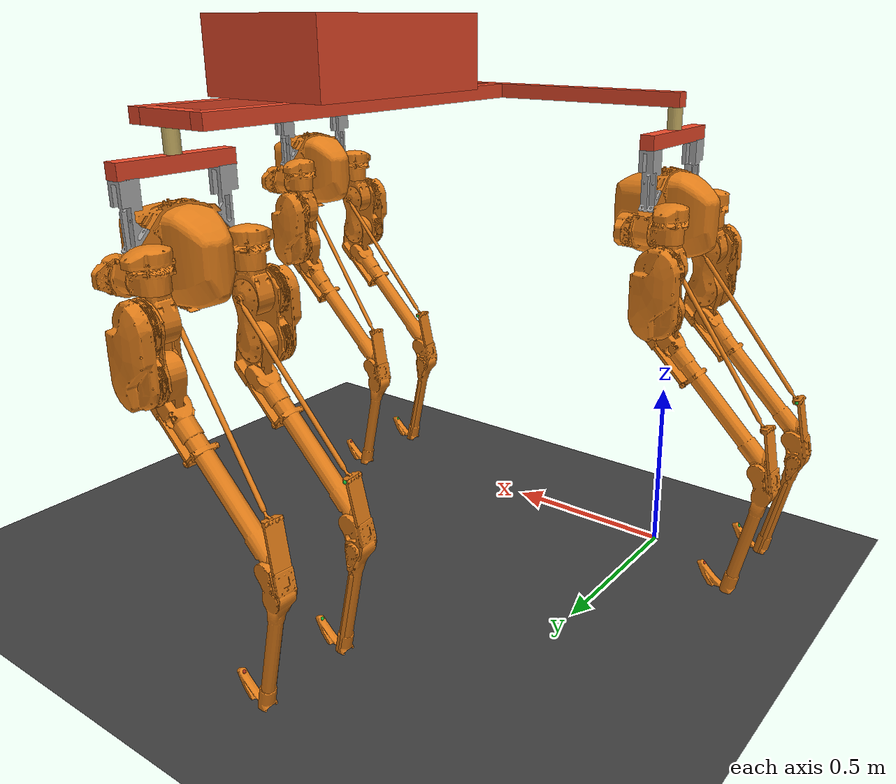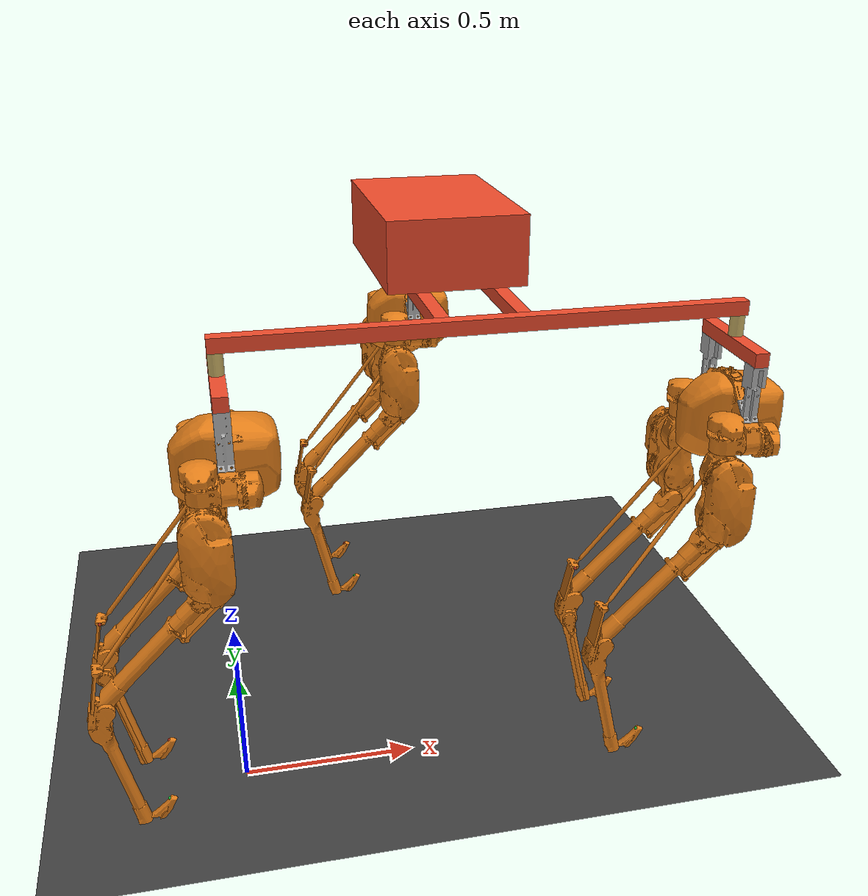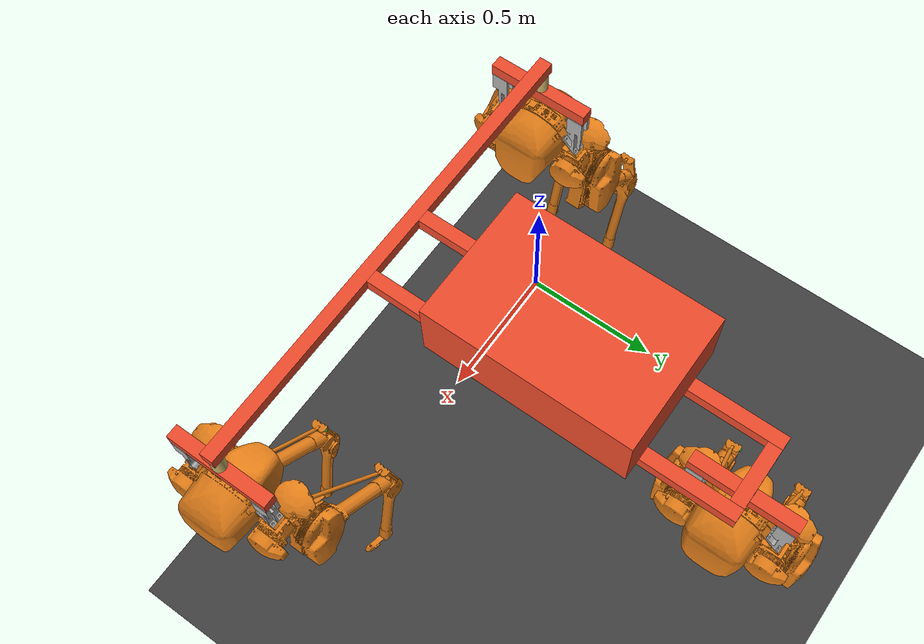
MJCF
<!-- Cassie simulation model developed by the Dynamic Robotics Laboratory -->
<mujoco model='cassie'>
  <compiler inertiafromgeom='auto' angle='degree' eulerseq='zyx' meshdir='cassie-stl-meshes'/>
  <size nuser_actuator='1' nuser_sensor='1' nuser_geom='1' nconmax='1000'/>
  <option timestep='0.0005' iterations='50' solver='Newton' gravity='0 0 -9.80665'/>
  <!-- Timestep is set to 0.0005 because our controller runs at 2 kHz -->
  <!-- Larger values still have stable dynamics -->

  <visual>
    <quality shadowsize='4096'/>
    <map znear='0.01' zfar='5'/>
    <global offwidth='848'/>
  </visual>

  <default>
    <joint limited='true'/>
    <motor ctrllimited='true'/>
    <geom contype='0' conaffinity='0' condim='1' solref='0.005 1'/>
    <equality solref='0.005 1'/>
    <default class='cassie'>
      <geom material='cassie'/>
    </default>
    <default class='collision'>
      <!-- User parameter for geoms is used to identify collision types -->
      <geom material='collision' contype='1' user='2'/>
      <default class='collision-left'>
        <geom contype='2' conaffinity='4' group='1'/>
      </default>
      <default class='collision-right'>
        <geom contype='4' conaffinity='2' group='1'/>
      </default>
    </default>
    <default class='obstacle'>
      <geom material='obstacle' condim='3' contype='8' conaffinity='15' user='1'/>
    </default>
  </default>

  <asset>
    <texture type='skybox' builtin='gradient' width='128' height='128' rgb1='0.4 0.6 0.8' rgb2='0 0 0'/>
    <texture name='plane' type='2d' builtin='checker' rgb1='0.2 0.2 0.2' rgb2='0.3 0.3 0.3' width='512' height='512'/>
    <material name='plane' reflectance='0.0' texture='plane' texrepeat='1 1' texuniform='true'/>
    <material name='cassie'    rgba='0.9 0.5 0.1 1'/>
    <material name='collision' rgba='0.1 0.5 0.9 0'/>
    <material name='obstacle'  rgba='0.2 0.6 0.2 1'/>
    <mesh name='cassie-pelvis' file='pelvis.stl'/>
    <mesh name='left-hip-roll'     file='hip-roll.stl'/>
    <mesh name='left-hip-yaw'      file='hip-yaw.stl'/>
    <mesh name='left-hip-pitch'    file='hip-pitch.stl'/>
    <mesh name='left-achilles-rod' file='achilles-rod.stl'/>
    <mesh name='left-knee'         file='knee.stl'/>
    <mesh name='left-knee-spring'  file='knee-spring.stl'/>
    <mesh name='left-shin'         file='shin.stl'/>
    <mesh name='left-tarsus'       file='tarsus.stl'/>
    <mesh name='left-heel-spring'  file='heel-spring.stl'/>
    <mesh name='left-foot-crank'   file='foot-crank.stl'/>
    <mesh name='left-plantar-rod'  file='plantar-rod.stl'/>
    <mesh name='left-foot'         file='foot.stl'/>
    <mesh name='right-hip-roll'     scale='1 -1 1' file='hip-roll.stl'/>
    <mesh name='right-hip-yaw'      scale='1 -1 1' file='hip-yaw.stl'/>
    <mesh name='right-hip-pitch'    scale='1 1 -1' file='hip-pitch.stl'/>
    <mesh name='right-achilles-rod' scale='1 1 -1' file='achilles-rod.stl'/>
    <mesh name='right-knee'         scale='1 1 -1' file='knee.stl'/>
    <mesh name='right-knee-spring'  scale='1 1 -1' file='knee-spring.stl'/>
    <mesh name='right-shin'         scale='1 1 -1' file='shin.stl'/>
    <mesh name='right-tarsus'       scale='1 1 -1' file='tarsus.stl'/>
    <mesh name='right-heel-spring'  scale='1 1 -1' file='heel-spring.stl'/>
    <mesh name='right-foot-crank'   scale='1 1 -1' file='foot-crank.stl'/>
    <mesh name='right-plantar-rod'  scale='1 1 -1' file='plantar-rod.stl'/>
    <mesh name='right-foot'         scale='1 1 -1' file='foot.stl'/>
    <mesh name='cassiepede-mount'         scale='1 1 -1' file='cassiepede-mount.stl'/>
    <mesh name='cassiepede-standoff'  scale='0.001 0.001 0.001' file='cassiepede_standoff.stl'/>
  </asset>

  <worldbody>
    <geom name='floor' pos='0.001 0 0' size='100 100 .125' type='plane' material='plane' condim='3' conaffinity='15' priority='100'/>
    <light mode='trackcom' pos='0 0 5' dir='0 0 -1'/>
    <light directional='true' pos='0 0 3' dir='0 0 -1' diffuse='0.2 0.2 0.2' specular='0 0 0'/>

    <body name="deck" pos="0 0 1.2">

      <inertial pos='0.0 0.0 0.0' mass='0'/>

      <site name='poi_site' size='1e-5' pos='0.7 0 0.0' rgba='0.0 0.5 0.5 1.0'/>

      <body pos='0.7 0.55 0.14' euler="90 0 0">
        <geom  pos='0.02 -0.12 0.0'  mass='5.0' type='box' size='0.55 0.02 0.02'
              rgba="0.93333333 0.29411765 0.16862745 1" class='collision' group='1'/>

        <geom pos='0.02 0.1 0.0'  mass='5.0' type='box' size='0.55 0.02 0.02'
              rgba="0.93333333 0.29411765 0.16862745 1" class='collision' group='1'/>

        <geom pos='0.55 -0.01 0.0' mass='0.0'  type='box' size='0.09 0.02 0.02' euler="90 0 0"
              rgba="0.93333333 0.29411765 0.16862745 1" class='collision' group='1'/>

        <geom pos="0 0 0.12" type="box"  mass='5.0' size="0.3 0.2 0.1" rgba="0.93333333 0.29411765 0.16862745 1" class="collision" group="1"/>
      </body>

      <body pos='0.72 0 0.14'>
        <geom  type='box' mass="10.0" size='0.72 0.02 0.02'
              rgba="0.93333333 0.29411765 0.16862745 1" class='collision' group='1'/>
      </body>

      <joint type='slide' axis='1 0 0' limited='false' name="slide_a0"/>
      <joint type='slide' axis='0 1 0' limited='false' name="slide_a1"/>
      <joint type='slide' axis='0 0 1' limited='false' name="slide_a2" ref='1.01'/>
      <joint type='ball' limited='false'/>

      <body name='cassie-pelvis' pos='0 0 -0.2' childclass='cassie'>
        <geom type='mesh' mesh='cassiepede-standoff' pos='0 0.095 0.055' rgba="0.7 0.7 0.7 1.0" euler="90 0 90"/>
        <geom type='mesh' mesh='cassiepede-standoff' pos='0.041 -0.095 0.055' rgba="0.7 0.7 0.7 1.0" euler="-90 0 90"/>
        <geom type='box' size='0.16 0.02 0.02'  pos="0.02 0 0.24" rgba="0.93333333 0.29411765 0.16862745 1" euler="90 0 0" />
        <geom type="cylinder" size="0.02 0.035 0.01" pos="0.02 0 0.29" rgba="0.8 0.7 0.4 1"/>

        <camera name='track' pos='0 -3 1' zaxis='0 -1 0.5' mode='track'/>
          <site name='cassie-pelvis_site' size='0.01' pos='0.0 0.0 0.0' rgba='0.0 0.0 0.5 1.0'/>
          <camera name='realsense-d455' pos='.1856 0 0.24' euler='-90 0 30' fovy='58'/>
          <inertial pos='0.05066 0.000346 0.02841' mass='10.33' fullinertia='0.085821 0.049222 0.08626 1.276e-05 -0.00016022 -0.000414'/>

          <joint type='hinge' axis="0 0 1" limited='false' pos="0 0 0.2"/>
          <joint type='hinge' axis="0 1 0" limited='false' pos="0 0 0.2"/>
          <joint type='hinge' axis="1 0 0" limited='false' pos="0 0 0.2"/>

          <geom type='mesh' mesh='cassie-pelvis'/>
          <geom type='sphere' size='0.15' pos='0.02 0 0.02' class='collision' group='1'/>
          <site name='imu' size='0.01' pos='0.03155 0 -0.07996' rgba='0.5 0.5 0.5 1.0'/>
          <body name='left-hip-roll' pos='0.021 0.135 0' xyaxes='0 0 -1 0 1 0'>
            <inertial pos='-0.01793 0.0001 -0.04428' mass='1.82' fullinertia='0.003431 0.003793 0.002135 -6.65e-07 -0.00084 3.99e-06'/>
            <joint name='left-hip-roll' type='hinge' range='-15 22.5' damping='1' armature='0.038125'/>
            <geom type='mesh' mesh='left-hip-roll'/>
            <body name='left-hip-yaw' pos='0 0 -0.07' xyaxes='0 0 1 0 1 0'>
              <inertial pos='0 -1e-05 -0.034277' mass='1.171' fullinertia='0.002443 0.002803 0.000842 -4e-08 2.462e-07 -2.71e-08'/>
              <joint name='left-hip-yaw' type='hinge' range='-22.5 22.5' damping='1' armature='0.038125'/>
              <geom type='mesh' mesh='left-hip-yaw'/>
              <body name='left-hip-pitch' pos='0 0 -0.09' xyaxes='0 0 -1 1 0 0'>
                <inertial pos='0.05946 5e-05 -0.03581' mass='5.52' fullinertia='0.010898 0.029714 0.030257 -0.0002669 -5.721e-05 9.17e-06'/>
                <joint name='left-hip-pitch' type='hinge' range='-50 80' damping='1' armature='0.09344'/>
                <geom type='mesh' mesh='left-hip-pitch'/>
                <geom type='capsule' size='0.08' fromto='0 0 -0.04 0.12 0 -0.0355' class='collision' group='1'/>
                <body name='left-achilles-rod' pos='0 0 0.045' xyaxes='0.7922 -0.60599 -0.072096 0.60349 0.79547 -0.054922'>
                  <inertial pos='0.24719 0 0' mass='0.1567' fullinertia='3.754e-06 0.004487 0.004488 -3.74e-08 -1.61e-08 0'/>
                  <joint name='left-achilles-rod' type='ball' limited='false' damping='0.01'/>
                  <geom type='mesh' mesh='left-achilles-rod'/>
                  <geom type='capsule' size='0.008' fromto='0 0 0 0.5012 0.0 0' class='collision-left'/>
                </body>
                <body name='left-knee' pos='0.12 0 0.0045' xyaxes='0.70711 -0.70711 0 0.70711 0.70711 0'>
                  <inertial pos='0.023 0.03207 -0.002181' mass='0.7578' fullinertia='0.001376 0.0010335 0.0021637 -0.00039744 -4.085e-05 -5.374e-05'/>
                  <joint name='left-knee' type='hinge' ref='-45' range='-164 -37' damping='1' armature='0.09344'/>
                  <geom type='mesh' mesh='left-knee'/>
                  <body name='left-knee-spring' pos='0.06068 0.08241 0'>
                    <inertial pos='0.0836 0.0034 0' mass='0.186' fullinertia='5.215e-05 0.00041205 0.0003669 6.87e-06 0 0'/>
                    <geom type='mesh' mesh='left-knee-spring'/>
                  </body>
                  <body name='left-shin' pos='0.06068 0.04741 0'>
                    <inertial pos='0.18338 0.001169 0.0002123' mass='0.577' fullinertia='0.00035939 0.014728 0.014707 -0.00020981 2.266e-05 -1.2e-07'/>
                    <joint name='left-shin' type='hinge' range='-20 20' stiffness='1500' damping='0.1'/>
                    <geom type='mesh' mesh='left-shin'/>
                    <geom type='capsule' size='0.04' fromto='0 0 0 0.43476 0.02 0' class='collision-left'/>
                    <body name='left-tarsus' pos='0.43476 0.02 0' xyaxes='0.52992 0.84805 0 -0.84805 0.52992 0'>
                      <inertial pos='0.11046 -0.03058 -0.00131' mass='0.782' fullinertia='0.00039238 0.013595 0.013674 0.00023651 -4.987e-05 -4.82e-06'/>
                      <joint name='left-tarsus' type='hinge' ref='58' range='50 170' damping='0.1'/>
                      <geom type='mesh' mesh='left-tarsus'/>
                      <geom type='capsule' size='0.04' fromto='-0.01269 -0.03059 0.00092 0.408 -0.04 0' class='collision-left'/>
                      <body name='left-heel-spring' pos='-0.01269 -0.03059 0.00092' xyaxes='-0.91211 0.40829 0.036948 -0.40992 -0.90952 -0.068841'>
                        <inertial pos='0.081 0.0022 0' mass='0.126' fullinertia='2.959e-05 0.00022231 0.0002007 7.15e-06 -6e-07 1e-07'/>
                        <joint name='left-heel-spring' type='hinge' limited='false' stiffness='1250'/>
                        <geom type='mesh' mesh='left-heel-spring'/>
                        <geom type='box' size='0.09 0.005 0.04' pos='0.035 0.005 0.0' class='collision-left'/>
                        <site name="left-heel-spring-pt" type="sphere" pos="0.11877 0.0 0.025" size="0.005" rgba="0.7 0.2 0.1 1.0"/>
                      </body>
                      <body name='left-foot-crank' pos='0.058 -0.034 0.02275'>
                        <inertial pos='0.00493 2e-05 -0.00215' mass='0.1261' fullinertia='2.6941e-05 4.9621e-05 6.3362e-05 -2.1e-09 -3.9623e-06 -1.09e-08'/>
                        <joint name='left-foot-crank' type='hinge' range='-140 -30' damping='1'/>
                        <geom type='mesh' mesh='left-foot-crank' contype='2' conaffinity='4'/>
                        <body name='left-plantar-rod' pos='0.055 0 -0.00791'>
                          <inertial pos='0.17792 0 0' mass='0.1186' fullinertia='2.779e-06 0.001774 0.001775 -2.34e-08 -8.1e-09 0'/>
                          <joint name='left-plantar-rod' type='hinge' limited='false' damping='0.01'/>
                          <geom type='mesh' mesh='left-plantar-rod'/>
                          <geom type='capsule' size='0.008' fromto='0 0 0 0.35012 0.0 0' class='collision-left'/>
                          <site name="left-plantar-rod-pt" type="sphere" pos="0.17506 0.0 0.0" size="0.005" rgba="0.7 0.2 0.1 1.0"/>
                        </body>
                      </body>
                      <body name='left-foot' pos='0.408 -0.04 0'>
                        <inertial pos='0.00474 0.02748 -0.00014' mass='0.1498' fullinertia='0.00017388 0.00016793 0.00033261 0.00011814 1.36e-06 -4e-07'/>
                        <joint name='left-foot' type='hinge' range='-140 -30' damping='1' armature='0.01225'/>
                        <geom type='mesh' mesh='left-foot'/>
                        <geom type='capsule' size='0.02' fromto='-0.052821 0.092622 0 0.069746 -0.010224 0' class='collision-left'/>
                        <site name="left-foot-mid" type="sphere" pos="0.01762 0.05219 0" euler="140 0 -90" size="0.005" rgba="0.7 0.2 0.1 1.0"/>
                        <site name="left-toe" type="sphere" pos="-0.052821 0.092622 0" size="0.005" rgba="0.7 0.2 0.1 1.0"/>
                        <site name="left-heel" type="sphere" pos="0.069746 -0.010224 0" size="0.005" rgba="0.7 0.2 0.1 1.0"/>
                      </body>
                    </body>
                  </body>
                </body>
              </body>
            </body>
          </body>
          <body name='right-hip-roll' pos='0.021 -0.135 0' xyaxes='0 0 -1 0 1 0'>
             <inertial pos='-0.01793 0.0001 -0.04428' mass='1.82' fullinertia='0.003431 0.003793 0.002135 6.65e-07 -0.00084 -3.99e-06'/>
            <joint name='right-hip-roll' type='hinge' range='-22.5 15' damping='1' armature='0.038125'/>
            <geom type='mesh' mesh='right-hip-roll'/>
            <body name='right-hip-yaw' pos='0 0 -0.07' xyaxes='0 0 1 0 1 0'>
              <inertial pos='0 1e-05 -0.034277' mass='1.171' fullinertia='0.002443 0.002803 0.000842 4e-08 2.462e-07 2.71e-08'/>
              <joint name='right-hip-yaw' type='hinge' range='-22.5 22.5' damping='1' armature='0.038125'/>
              <geom type='mesh' mesh='right-hip-yaw'/>
              <body name='right-hip-pitch' pos='0 0 -0.09' xyaxes='0 0 -1 1 0 0'>
                <inertial pos='0.05946 5e-05 0.03581' mass='5.52' fullinertia='0.010898 0.029714 0.030257 -0.0002669 5.721e-05 -9.17e-06'/>
                <joint name='right-hip-pitch' type='hinge' range='-50 80' damping='1' armature='0.09344'/>
                <geom type='mesh' mesh='right-hip-pitch'/>
                <geom type='capsule' size='0.08' fromto='0 0 0.04 0.12 0 0.0355' class='collision' group='1'/>
                <body name='right-achilles-rod' pos='0 0 -0.045' xyaxes='0.7922 -0.60599 0.072096 0.60349 0.79547 0.054922'>
                  <inertial pos='0.24719 0 0' mass='0.1567' fullinertia='3.754e-06 0.004487 0.004488 -3.74e-08 1.61e-08 0'/>
                  <joint name='right-achilles-rod' type='ball' limited='false' damping='0.01'/>
                  <geom type='mesh' mesh='right-achilles-rod'/>
                  <geom type='capsule' size='0.008' fromto='0 0 0 0.5012 0.0 0' class='collision-right'/>
                </body>
                <body name='right-knee' pos='0.12 0 -0.0045' xyaxes='0.70711 -0.70711 0 0.70711 0.70711 0'>
                  <inertial pos='0.023 0.03207 0.002181' mass='0.7578' fullinertia='0.001376 0.0010335 0.0021637 -0.00039744 4.085e-05 5.374e-05'/>
                  <joint name='right-knee' type='hinge' ref='-45' range='-164 -37' damping='1' armature='0.09344'/>
                  <geom type='mesh' mesh='right-knee'/>
                  <body name='right-knee-spring' pos='0.06068 0.08241 0'>
                    <inertial pos='0.0836 0.0034 0' mass='0.186' fullinertia='5.215e-05 0.00041205 0.0003669 6.87e-06 0 0'/>
                    <geom type='mesh' mesh='right-knee-spring'/>
                  </body>
                  <body name='right-shin' pos='0.06068 0.04741 0'>
                    <inertial pos='0.18338 0.001169 -0.0002123' mass='0.577' fullinertia='0.00035939 0.014728 0.014707 -0.00020981 -2.266e-05 1.2e-07'/>
                    <joint name='right-shin' type='hinge' range='-20 20' stiffness='1500' damping='0.1'/>
                    <geom type='mesh' mesh='right-shin'/>
                    <geom type='capsule' size='0.04' fromto='0 0 0 0.43476 0.02 0' class='collision-right'/>
                    <body name='right-tarsus' pos='0.43476 0.02 0' xyaxes='0.52992 0.84805 0 -0.84805 0.52992 0'>
                      <inertial pos='0.11046 -0.03058 0.00131' mass='0.782' fullinertia='0.00039238 0.013595 0.013674 0.00023651 4.987e-05 4.82e-06'/>
                      <joint name='right-tarsus' type='hinge' ref='58' range='50 170' damping='0.1'/>
                      <geom type='mesh' mesh='right-tarsus'/>
                      <geom type='capsule' size='0.04' fromto='-0.01269 -0.03059 -0.00092 0.408 -0.04 0' class='collision-right'/>
                      <body name='right-heel-spring' pos='-0.01269 -0.03059 -0.00092' xyaxes='-0.91211 0.40829 -0.036948 -0.40992 -0.90952 0.068841'>
                        <inertial pos='0.081 0.0022 0' mass='0.126' fullinertia='2.959e-05 0.00022231 0.0002007 7.15e-06 6e-07 -1e-07'/>
                        <joint name='right-heel-spring' type='hinge' limited='false' stiffness='1250'/>
                        <geom type='mesh' mesh='right-heel-spring'/>
                        <geom type='box' size='0.09 0.005 0.04' pos='0.035 0.005 0.0' class='collision-right'/>
                        <site name="right-heel-spring-pt" type="sphere" pos="0.11877 0.0 -0.025" size="0.005" rgba="0.1 0.7 0.2 1.0"/>
                      </body>
                      <body name='right-foot-crank' pos='0.058 -0.034 -0.02275'>
                        <inertial pos='0.00493 2e-05 0.00215' mass='0.1261' fullinertia='2.6941e-05 4.9621e-05 6.3362e-05 -2.1e-09 3.9623e-06 1.09e-08'/>
                        <joint name='right-foot-crank' type='hinge' range='-140 -30' damping='1'/>
                        <geom type='mesh' mesh='right-foot-crank' contype='4' conaffinity='2'/>
                        <body name='right-plantar-rod' pos='0.055 0 0.00791'>
                          <inertial pos='0.17792 0 0' mass='0.1186' fullinertia='2.779e-06 0.001774 0.001775 -2.34e-08 8.1e-09 0'/>
                          <joint name='right-plantar-rod' type='hinge' limited='false' damping='0.01'/>
                          <geom type='mesh' mesh='right-plantar-rod'/>
                          <geom type='capsule' size='0.008' fromto='0 0 0 0.35012 0.0 0' class='collision-right'/>
                          <site name="right-plantar-rod-pt" type="sphere" pos="0.17506 0.0 0.0" size="0.005" rgba="0.1 0.7 0.2 1.0"/>
                        </body>
                      </body>
                      <body name='right-foot' pos='0.408 -0.04 0'>
                        <inertial pos='0.00474 0.02748 0.00014' mass='0.1498' fullinertia='0.00017388 0.00016793 0.00033261 0.00011814 -1.36e-06 4e-07'/>
                        <joint name='right-foot' type='hinge' range='-140 -30' damping='1' armature='0.01225'/>
                        <geom type='mesh' mesh='right-foot'/>
                        <geom type='capsule' size='0.02' fromto='-0.052821 0.092622 0 0.069746 -0.010224 0' class='collision-right'/>
                        <site name="right-foot-mid" type="sphere" pos="0.01762 0.05219 0" euler="140 0 -90" size="0.005" rgba="0.7 0.2 0.1 1.0"/>
                        <site name="right-toe" type="sphere" pos="-0.052821 0.092622 0.0" size="0.005" rgba="0.1 0.7 0.2 1.0"/>
                        <site name="right-heel" type="sphere" pos="0.069746 -0.010224 0" size="0.005" rgba="0.1 0.7 0.2 1.0"/>
                      </body>
                    </body>
                  </body>
                </body>
              </body>
            </body>
          </body>
        </body>

      <body name='c2_cassie-pelvis' pos='0.7 1.1 -0.2' childclass='cassie'>
        <geom type='mesh' mesh='cassiepede-standoff' pos='0 0.095 0.055' rgba="0.7 0.7 0.7 1.0" euler="90 0 90"/>
        <geom type='mesh' mesh='cassiepede-standoff' pos='0.041 -0.095 0.055' rgba="0.7 0.7 0.7 1.0" euler="-90 0 90"/>
        <geom type='box' size='0.16 0.02 0.02'  pos="0.02 0 0.24" rgba="0.93333333 0.29411765 0.16862745 1" euler="90 0 0" />
        <geom type="cylinder" size="0.02 0.035 0.01" pos="0.02 0 0.29" rgba="0.8 0.7 0.4 1"/>

        <site name='c2_cassie-pelvis_site' size='0.01' pos='0.0 0.0 0.0' rgba='0.0 0.0 0.5 1.0'/>
        <camera name='c2_track' pos='0 -3 1' zaxis='0 -1 0.5' mode='track'/>
        <camera name='c2_realsense-d455' pos='.1856 0 0.24' euler='-90 0 30' fovy='58'/>
        <inertial pos='0.05066 0.000346 0.02841' mass='10.33' fullinertia='0.085821 0.049222 0.08626 1.276e-05 -0.00016022 -0.000414'/>

        <joint type='hinge' axis="0 0 1" limited='false' pos="0 0 0.2"/>
        <joint type='hinge' axis="0 1 0" limited='false' pos="0 0 0.2"/>
        <joint type='hinge' axis="1 0 0" limited='false' pos="0 0 0.2"/>

        <geom type='mesh' mesh='cassie-pelvis'/>
        <geom type='sphere' size='0.15' pos='0.02 0 0.02' class='collision' group='1'/>
        <site name='c2_imu' size='0.01' pos='0.03155 0 -0.07996' rgba='0.5 0.5 0.5 1.0'/>
        <body name='c2_left-hip-roll' pos='0.021 0.135 0' xyaxes='0 0 -1 0 1 0'>
          <inertial pos='-0.01793 0.0001 -0.04428' mass='1.82' fullinertia='0.003431 0.003793 0.002135 -6.65e-07 -0.00084 3.99e-06'/>
          <joint name='c2_left-hip-roll' type='hinge' range='-15 22.5' damping='1' armature='0.038125'/>
          <geom type='mesh' mesh='left-hip-roll'/>
          <body name='c2_left-hip-yaw' pos='0 0 -0.07' xyaxes='0 0 1 0 1 0'>
            <inertial pos='0 -1e-05 -0.034277' mass='1.171' fullinertia='0.002443 0.002803 0.000842 -4e-08 2.462e-07 -2.71e-08'/>
            <joint name='c2_left-hip-yaw' type='hinge' range='-22.5 22.5' damping='1' armature='0.038125'/>
            <geom type='mesh' mesh='left-hip-yaw'/>
            <body name='c2_left-hip-pitch' pos='0 0 -0.09' xyaxes='0 0 -1 1 0 0'>
              <inertial pos='0.05946 5e-05 -0.03581' mass='5.52' fullinertia='0.010898 0.029714 0.030257 -0.0002669 -5.721e-05 9.17e-06'/>
              <joint name='c2_left-hip-pitch' type='hinge' range='-50 80' damping='1' armature='0.09344'/>
              <geom type='mesh' mesh='left-hip-pitch'/>
              <geom type='capsule' size='0.08' fromto='0 0 -0.04 0.12 0 -0.0355' class='collision' group='1'/>
              <body name='c2_left-achilles-rod' pos='0 0 0.045' xyaxes='0.7922 -0.60599 -0.072096 0.60349 0.79547 -0.054922'>
                <inertial pos='0.24719 0 0' mass='0.1567' fullinertia='3.754e-06 0.004487 0.004488 -3.74e-08 -1.61e-08 0'/>
                <joint name='c2_left-achilles-rod' type='ball' limited='false' damping='0.01'/>
                <geom type='mesh' mesh='left-achilles-rod'/>
                <geom type='capsule' size='0.008' fromto='0 0 0 0.5012 0.0 0' class='collision-left'/>
              </body>
              <body name='c2_left-knee' pos='0.12 0 0.0045' xyaxes='0.70711 -0.70711 0 0.70711 0.70711 0'>
                <inertial pos='0.023 0.03207 -0.002181' mass='0.7578' fullinertia='0.001376 0.0010335 0.0021637 -0.00039744 -4.085e-05 -5.374e-05'/>
                <joint name='c2_left-knee' type='hinge' ref='-45' range='-164 -37' damping='1' armature='0.09344'/>
                <geom type='mesh' mesh='left-knee'/>
                <body name='c2_left-knee-spring' pos='0.06068 0.08241 0'>
                  <inertial pos='0.0836 0.0034 0' mass='0.186' fullinertia='5.215e-05 0.00041205 0.0003669 6.87e-06 0 0'/>
                  <geom type='mesh' mesh='left-knee-spring'/>
                </body>
                <body name='c2_left-shin' pos='0.06068 0.04741 0'>
                  <inertial pos='0.18338 0.001169 0.0002123' mass='0.577' fullinertia='0.00035939 0.014728 0.014707 -0.00020981 2.266e-05 -1.2e-07'/>
                  <joint name='c2_left-shin' type='hinge' range='-20 20' stiffness='1500' damping='0.1'/>
                  <geom type='mesh' mesh='left-shin'/>
                  <geom type='capsule' size='0.04' fromto='0 0 0 0.43476 0.02 0' class='collision-left'/>
                  <body name='c2_left-tarsus' pos='0.43476 0.02 0' xyaxes='0.52992 0.84805 0 -0.84805 0.52992 0'>
                    <inertial pos='0.11046 -0.03058 -0.00131' mass='0.782' fullinertia='0.00039238 0.013595 0.013674 0.00023651 -4.987e-05 -4.82e-06'/>
                    <joint name='c2_left-tarsus' type='hinge' ref='58' range='50 170' damping='0.1'/>
                    <geom type='mesh' mesh='left-tarsus'/>
                    <geom type='capsule' size='0.04' fromto='-0.01269 -0.03059 0.00092 0.408 -0.04 0' class='collision-left'/>
                    <body name='c2_left-heel-spring' pos='-0.01269 -0.03059 0.00092' xyaxes='-0.91211 0.40829 0.036948 -0.40992 -0.90952 -0.068841'>
                      <inertial pos='0.081 0.0022 0' mass='0.126' fullinertia='2.959e-05 0.00022231 0.0002007 7.15e-06 -6e-07 1e-07'/>
                      <joint name='c2_left-heel-spring' type='hinge' limited='false' stiffness='1250'/>
                      <geom type='mesh' mesh='left-heel-spring'/>
                      <geom type='box' size='0.09 0.005 0.04' pos='0.035 0.005 0.0' class='collision-left'/>
                      <site name="c2_left-heel-spring-pt" type="sphere" pos="0.11877 0.0 0.025" size="0.005" rgba="0.7 0.2 0.1 1.0"/>
                    </body>
                    <body name='c2_left-foot-crank' pos='0.058 -0.034 0.02275'>
                      <inertial pos='0.00493 2e-05 -0.00215' mass='0.1261' fullinertia='2.6941e-05 4.9621e-05 6.3362e-05 -2.1e-09 -3.9623e-06 -1.09e-08'/>
                      <joint name='c2_left-foot-crank' type='hinge' range='-140 -30' damping='1'/>
                      <geom type='mesh' mesh='left-foot-crank' contype='2' conaffinity='4'/>
                      <body name='c2_left-plantar-rod' pos='0.055 0 -0.00791'>
                        <inertial pos='0.17792 0 0' mass='0.1186' fullinertia='2.779e-06 0.001774 0.001775 -2.34e-08 -8.1e-09 0'/>
                        <joint name='c2_left-plantar-rod' type='hinge' limited='false' damping='0.01'/>
                        <geom type='mesh' mesh='left-plantar-rod'/>
                        <geom type='capsule' size='0.008' fromto='0 0 0 0.35012 0.0 0' class='collision-left'/>
                        <site name="c2_left-plantar-rod-pt" type="sphere" pos="0.17506 0.0 0.0" size="0.005" rgba="0.7 0.2 0.1 1.0"/>
                      </body>
                    </body>
                    <body name='c2_left-foot' pos='0.408 -0.04 0'>
                      <inertial pos='0.00474 0.02748 -0.00014' mass='0.1498' fullinertia='0.00017388 0.00016793 0.00033261 0.00011814 1.36e-06 -4e-07'/>
                      <joint name='c2_left-foot' type='hinge' range='-140 -30' damping='1' armature='0.01225'/>
                      <geom type='mesh' mesh='left-foot'/>
                      <geom type='capsule' size='0.02' fromto='-0.052821 0.092622 0 0.069746 -0.010224 0' class='collision-left'/>
                      <site name="c2_left-foot-mid" type="sphere" pos="0.01762 0.05219 0" euler="140 0 -90" size="0.005" rgba="0.7 0.2 0.1 1.0"/>
                      <site name="c2_left-toe" type="sphere" pos="-0.052821 0.092622 0" size="0.005" rgba="0.7 0.2 0.1 1.0"/>
                      <site name="c2_left-heel" type="sphere" pos="0.069746 -0.010224 0" size="0.005" rgba="0.7 0.2 0.1 1.0"/>
                    </body>
                  </body>
                </body>
              </body>
            </body>
          </body>
        </body>
        <body name='c2_right-hip-roll' pos='0.021 -0.135 0' xyaxes='0 0 -1 0 1 0'>
          <inertial pos='-0.01793 0.0001 -0.04428' mass='1.82' fullinertia='0.003431 0.003793 0.002135 6.65e-07 -0.00084 -3.99e-06'/>
          <joint name='c2_right-hip-roll' type='hinge' range='-22.5 15' damping='1' armature='0.038125'/>
          <geom type='mesh' mesh='right-hip-roll'/>
          <body name='c2_right-hip-yaw' pos='0 0 -0.07' xyaxes='0 0 1 0 1 0'>
            <inertial pos='0 1e-05 -0.034277' mass='1.171' fullinertia='0.002443 0.002803 0.000842 4e-08 2.462e-07 2.71e-08'/>
            <joint name='c2_right-hip-yaw' type='hinge' range='-22.5 22.5' damping='1' armature='0.038125'/>
            <geom type='mesh' mesh='right-hip-yaw'/>
            <body name='c2_right-hip-pitch' pos='0 0 -0.09' xyaxes='0 0 -1 1 0 0'>
              <inertial pos='0.05946 5e-05 0.03581' mass='5.52' fullinertia='0.010898 0.029714 0.030257 -0.0002669 5.721e-05 -9.17e-06'/>
              <joint name='c2_right-hip-pitch' type='hinge' range='-50 80' damping='1' armature='0.09344'/>
              <geom type='mesh' mesh='right-hip-pitch'/>
              <geom type='capsule' size='0.08' fromto='0 0 0.04 0.12 0 0.0355' class='collision' group='1'/>
              <body name='c2_right-achilles-rod' pos='0 0 -0.045' xyaxes='0.7922 -0.60599 0.072096 0.60349 0.79547 0.054922'>
                <inertial pos='0.24719 0 0' mass='0.1567' fullinertia='3.754e-06 0.004487 0.004488 -3.74e-08 1.61e-08 0'/>
                <joint name='c2_right-achilles-rod' type='ball' limited='false' damping='0.01'/>
                <geom type='mesh' mesh='right-achilles-rod'/>
                <geom type='capsule' size='0.008' fromto='0 0 0 0.5012 0.0 0' class='collision-right'/>
              </body>
              <body name='c2_right-knee' pos='0.12 0 -0.0045' xyaxes='0.70711 -0.70711 0 0.70711 0.70711 0'>
                <inertial pos='0.023 0.03207 0.002181' mass='0.7578' fullinertia='0.001376 0.0010335 0.0021637 -0.00039744 4.085e-05 5.374e-05'/>
                <joint name='c2_right-knee' type='hinge' ref='-45' range='-164 -37' damping='1' armature='0.09344'/>
                <geom type='mesh' mesh='right-knee'/>
                <body name='c2_right-knee-spring' pos='0.06068 0.08241 0'>
                  <inertial pos='0.0836 0.0034 0' mass='0.186' fullinertia='5.215e-05 0.00041205 0.0003669 6.87e-06 0 0'/>
                  <geom type='mesh' mesh='right-knee-spring'/>
                </body>
                <body name='c2_right-shin' pos='0.06068 0.04741 0'>
                  <inertial pos='0.18338 0.001169 -0.0002123' mass='0.577' fullinertia='0.00035939 0.014728 0.014707 -0.00020981 -2.266e-05 1.2e-07'/>
                  <joint name='c2_right-shin' type='hinge' range='-20 20' stiffness='1500' damping='0.1'/>
                  <geom type='mesh' mesh='right-shin'/>
                  <geom type='capsule' size='0.04' fromto='0 0 0 0.43476 0.02 0' class='collision-right'/>
                  <body name='c2_right-tarsus' pos='0.43476 0.02 0' xyaxes='0.52992 0.84805 0 -0.84805 0.52992 0'>
                    <inertial pos='0.11046 -0.03058 0.00131' mass='0.782' fullinertia='0.00039238 0.013595 0.013674 0.00023651 4.987e-05 4.82e-06'/>
                    <joint name='c2_right-tarsus' type='hinge' ref='58' range='50 170' damping='0.1'/>
                    <geom type='mesh' mesh='right-tarsus'/>
                    <geom type='capsule' size='0.04' fromto='-0.01269 -0.03059 -0.00092 0.408 -0.04 0' class='collision-right'/>
                    <body name='c2_right-heel-spring' pos='-0.01269 -0.03059 -0.00092' xyaxes='-0.91211 0.40829 -0.036948 -0.40992 -0.90952 0.068841'>
                      <inertial pos='0.081 0.0022 0' mass='0.126' fullinertia='2.959e-05 0.00022231 0.0002007 7.15e-06 6e-07 -1e-07'/>
                      <joint name='c2_right-heel-spring' type='hinge' limited='false' stiffness='1250'/>
                      <geom type='mesh' mesh='right-heel-spring'/>
                      <geom type='box' size='0.09 0.005 0.04' pos='0.035 0.005 0.0' class='collision-right'/>
                      <site name="c2_right-heel-spring-pt" type="sphere" pos="0.11877 0.0 -0.025" size="0.005" rgba="0.1 0.7 0.2 1.0"/>
                    </body>
                    <body name='c2_right-foot-crank' pos='0.058 -0.034 -0.02275'>
                      <inertial pos='0.00493 2e-05 0.00215' mass='0.1261' fullinertia='2.6941e-05 4.9621e-05 6.3362e-05 -2.1e-09 3.9623e-06 1.09e-08'/>
                      <joint name='c2_right-foot-crank' type='hinge' range='-140 -30' damping='1'/>
                      <geom type='mesh' mesh='right-foot-crank' contype='4' conaffinity='2'/>
                      <body name='c2_right-plantar-rod' pos='0.055 0 0.00791'>
                        <inertial pos='0.17792 0 0' mass='0.1186' fullinertia='2.779e-06 0.001774 0.001775 -2.34e-08 8.1e-09 0'/>
                        <joint name='c2_right-plantar-rod' type='hinge' limited='false' damping='0.01'/>
                        <geom type='mesh' mesh='right-plantar-rod'/>
                        <geom type='capsule' size='0.008' fromto='0 0 0 0.35012 0.0 0' class='collision-right'/>
                        <site name="c2_right-plantar-rod-pt" type="sphere" pos="0.17506 0.0 0.0" size="0.005" rgba="0.1 0.7 0.2 1.0"/>
                      </body>
                    </body>
                    <body name='c2_right-foot' pos='0.408 -0.04 0'>
                      <inertial pos='0.00474 0.02748 0.00014' mass='0.1498' fullinertia='0.00017388 0.00016793 0.00033261 0.00011814 -1.36e-06 4e-07'/>
                      <joint name='c2_right-foot' type='hinge' range='-140 -30' damping='1' armature='0.01225'/>
                      <geom type='mesh' mesh='right-foot'/>
                      <geom type='capsule' size='0.02' fromto='-0.052821 0.092622 0 0.069746 -0.010224 0' class='collision-right'/>
                      <site name="c2_right-foot-mid" type="sphere" pos="0.01762 0.05219 0" euler="140 0 -90" size="0.005" rgba="0.7 0.2 0.1 1.0"/>
                      <site name="c2_right-toe" type="sphere" pos="-0.052821 0.092622 0.0" size="0.005" rgba="0.1 0.7 0.2 1.0"/>
                      <site name="c2_right-heel" type="sphere" pos="0.069746 -0.010224 0" size="0.005" rgba="0.1 0.7 0.2 1.0"/>
                    </body>
                  </body>
                </body>
              </body>
            </body>
          </body>
        </body>
      </body>

      <body name='c3_cassie-pelvis' pos='1.4 0 -0.2' childclass='cassie'>
        <geom type='mesh' mesh='cassiepede-standoff' pos='0 0.095 0.055' rgba="0.7 0.7 0.7 1.0" euler="90 0 90"/>
        <geom type='mesh' mesh='cassiepede-standoff' pos='0.041 -0.095 0.055' rgba="0.7 0.7 0.7 1.0" euler="-90 0 90"/>
        <geom type='box' size='0.16 0.02 0.02'  pos="0.02 0 0.24" rgba="0.93333333 0.29411765 0.16862745 1" euler="90 0 0" />
        <geom type="cylinder" size="0.02 0.035 0.01" pos="0.02 0 0.29" rgba="0.8 0.7 0.4 1"/>

        <site name='c3_cassie-pelvis_site' size='0.01' pos='0.0 0.0 0.0' rgba='0.0 0.0 0.5 1.0'/>
        <camera name='c3_track' pos='0 -3 1' zaxis='0 -1 0.5' mode='track'/>
        <camera name='c3_realsense-d455' pos='.1856 0 0.24' euler='-90 0 30' fovy='58'/>
        <inertial pos='0.05066 0.000346 0.02841' mass='10.33' fullinertia='0.085821 0.049222 0.08626 1.276e-05 -0.00016022 -0.000414'/>

        <joint type='hinge' axis="0 0 1" limited='false' pos="0 0 0.2"/>
        <joint type='hinge' axis="0 1 0" limited='false' pos="0 0 0.2"/>
        <joint type='hinge' axis="1 0 0" limited='false' pos="0 0 0.2"/>

        <geom type='mesh' mesh='cassie-pelvis'/>
        <geom type='sphere' size='0.15' pos='0.02 0 0.02' class='collision' group='1'/>
        <site name='c3_imu' size='0.01' pos='0.03155 0 -0.07996' rgba='0.5 0.5 0.5 1.0'/>
        <body name='c3_left-hip-roll' pos='0.021 0.135 0' xyaxes='0 0 -1 0 1 0'>
          <inertial pos='-0.01793 0.0001 -0.04428' mass='1.82' fullinertia='0.003431 0.003793 0.002135 -6.65e-07 -0.00084 3.99e-06'/>
          <joint name='c3_left-hip-roll' type='hinge' range='-15 22.5' damping='1' armature='0.038125'/>
          <geom type='mesh' mesh='left-hip-roll'/>
          <body name='c3_left-hip-yaw' pos='0 0 -0.07' xyaxes='0 0 1 0 1 0'>
            <inertial pos='0 -1e-05 -0.034277' mass='1.171' fullinertia='0.002443 0.002803 0.000842 -4e-08 2.462e-07 -2.71e-08'/>
            <joint name='c3_left-hip-yaw' type='hinge' range='-22.5 22.5' damping='1' armature='0.038125'/>
            <geom type='mesh' mesh='left-hip-yaw'/>
            <body name='c3_left-hip-pitch' pos='0 0 -0.09' xyaxes='0 0 -1 1 0 0'>
              <inertial pos='0.05946 5e-05 -0.03581' mass='5.52' fullinertia='0.010898 0.029714 0.030257 -0.0002669 -5.721e-05 9.17e-06'/>
              <joint name='c3_left-hip-pitch' type='hinge' range='-50 80' damping='1' armature='0.09344'/>
              <geom type='mesh' mesh='left-hip-pitch'/>
              <geom type='capsule' size='0.08' fromto='0 0 -0.04 0.12 0 -0.0355' class='collision' group='1'/>
              <body name='c3_left-achilles-rod' pos='0 0 0.045' xyaxes='0.7922 -0.60599 -0.072096 0.60349 0.79547 -0.054922'>
                <inertial pos='0.24719 0 0' mass='0.1567' fullinertia='3.754e-06 0.004487 0.004488 -3.74e-08 -1.61e-08 0'/>
                <joint name='c3_left-achilles-rod' type='ball' limited='false' damping='0.01'/>
                <geom type='mesh' mesh='left-achilles-rod'/>
                <geom type='capsule' size='0.008' fromto='0 0 0 0.5012 0.0 0' class='collision-left'/>
              </body>
              <body name='c3_left-knee' pos='0.12 0 0.0045' xyaxes='0.70711 -0.70711 0 0.70711 0.70711 0'>
                <inertial pos='0.023 0.03207 -0.002181' mass='0.7578' fullinertia='0.001376 0.0010335 0.0021637 -0.00039744 -4.085e-05 -5.374e-05'/>
                <joint name='c3_left-knee' type='hinge' ref='-45' range='-164 -37' damping='1' armature='0.09344'/>
                <geom type='mesh' mesh='left-knee'/>
                <body name='c3_left-knee-spring' pos='0.06068 0.08241 0'>
                  <inertial pos='0.0836 0.0034 0' mass='0.186' fullinertia='5.215e-05 0.00041205 0.0003669 6.87e-06 0 0'/>
                  <geom type='mesh' mesh='left-knee-spring'/>
                </body>
                <body name='c3_left-shin' pos='0.06068 0.04741 0'>
                  <inertial pos='0.18338 0.001169 0.0002123' mass='0.577' fullinertia='0.00035939 0.014728 0.014707 -0.00020981 2.266e-05 -1.2e-07'/>
                  <joint name='c3_left-shin' type='hinge' range='-20 20' stiffness='1500' damping='0.1'/>
                  <geom type='mesh' mesh='left-shin'/>
                  <geom type='capsule' size='0.04' fromto='0 0 0 0.43476 0.02 0' class='collision-left'/>
                  <body name='c3_left-tarsus' pos='0.43476 0.02 0' xyaxes='0.52992 0.84805 0 -0.84805 0.52992 0'>
                    <inertial pos='0.11046 -0.03058 -0.00131' mass='0.782' fullinertia='0.00039238 0.013595 0.013674 0.00023651 -4.987e-05 -4.82e-06'/>
                    <joint name='c3_left-tarsus' type='hinge' ref='58' range='50 170' damping='0.1'/>
                    <geom type='mesh' mesh='left-tarsus'/>
                    <geom type='capsule' size='0.04' fromto='-0.01269 -0.03059 0.00092 0.408 -0.04 0' class='collision-left'/>
                    <body name='c3_left-heel-spring' pos='-0.01269 -0.03059 0.00092' xyaxes='-0.91211 0.40829 0.036948 -0.40992 -0.90952 -0.068841'>
                      <inertial pos='0.081 0.0022 0' mass='0.126' fullinertia='2.959e-05 0.00022231 0.0002007 7.15e-06 -6e-07 1e-07'/>
                      <joint name='c3_left-heel-spring' type='hinge' limited='false' stiffness='1250'/>
                      <geom type='mesh' mesh='left-heel-spring'/>
                      <geom type='box' size='0.09 0.005 0.04' pos='0.035 0.005 0.0' class='collision-left'/>
                      <site name="c3_left-heel-spring-pt" type="sphere" pos="0.11877 0.0 0.025" size="0.005" rgba="0.7 0.2 0.1 1.0"/>
                    </body>
                    <body name='c3_left-foot-crank' pos='0.058 -0.034 0.02275'>
                      <inertial pos='0.00493 2e-05 -0.00215' mass='0.1261' fullinertia='2.6941e-05 4.9621e-05 6.3362e-05 -2.1e-09 -3.9623e-06 -1.09e-08'/>
                      <joint name='c3_left-foot-crank' type='hinge' range='-140 -30' damping='1'/>
                      <geom type='mesh' mesh='left-foot-crank' contype='2' conaffinity='4'/>
                      <body name='c3_left-plantar-rod' pos='0.055 0 -0.00791'>
                        <inertial pos='0.17792 0 0' mass='0.1186' fullinertia='2.779e-06 0.001774 0.001775 -2.34e-08 -8.1e-09 0'/>
                        <joint name='c3_left-plantar-rod' type='hinge' limited='false' damping='0.01'/>
                        <geom type='mesh' mesh='left-plantar-rod'/>
                        <geom type='capsule' size='0.008' fromto='0 0 0 0.35012 0.0 0' class='collision-left'/>
                        <site name="c3_left-plantar-rod-pt" type="sphere" pos="0.17506 0.0 0.0" size="0.005" rgba="0.7 0.2 0.1 1.0"/>
                      </body>
                    </body>
                    <body name='c3_left-foot' pos='0.408 -0.04 0'>
                      <inertial pos='0.00474 0.02748 -0.00014' mass='0.1498' fullinertia='0.00017388 0.00016793 0.00033261 0.00011814 1.36e-06 -4e-07'/>
                      <joint name='c3_left-foot' type='hinge' range='-140 -30' damping='1' armature='0.01225'/>
                      <geom type='mesh' mesh='left-foot'/>
                      <geom type='capsule' size='0.02' fromto='-0.052821 0.092622 0 0.069746 -0.010224 0' class='collision-left'/>
                      <site name="c3_left-foot-mid" type="sphere" pos="0.01762 0.05219 0" euler="140 0 -90" size="0.005" rgba="0.7 0.2 0.1 1.0"/>
                      <site name="c3_left-toe" type="sphere" pos="-0.052821 0.092622 0" size="0.005" rgba="0.7 0.2 0.1 1.0"/>
                      <site name="c3_left-heel" type="sphere" pos="0.069746 -0.010224 0" size="0.005" rgba="0.7 0.2 0.1 1.0"/>
                    </body>
                  </body>
                </body>
              </body>
            </body>
          </body>
        </body>
        <body name='c3_right-hip-roll' pos='0.021 -0.135 0' xyaxes='0 0 -1 0 1 0'>
          <inertial pos='-0.01793 0.0001 -0.04428' mass='1.82' fullinertia='0.003431 0.003793 0.002135 6.65e-07 -0.00084 -3.99e-06'/>
          <joint name='c3_right-hip-roll' type='hinge' range='-22.5 15' damping='1' armature='0.038125'/>
          <geom type='mesh' mesh='right-hip-roll'/>
          <body name='c3_right-hip-yaw' pos='0 0 -0.07' xyaxes='0 0 1 0 1 0'>
            <inertial pos='0 1e-05 -0.034277' mass='1.171' fullinertia='0.002443 0.002803 0.000842 4e-08 2.462e-07 2.71e-08'/>
            <joint name='c3_right-hip-yaw' type='hinge' range='-22.5 22.5' damping='1' armature='0.038125'/>
            <geom type='mesh' mesh='right-hip-yaw'/>
            <body name='c3_right-hip-pitch' pos='0 0 -0.09' xyaxes='0 0 -1 1 0 0'>
              <inertial pos='0.05946 5e-05 0.03581' mass='5.52' fullinertia='0.010898 0.029714 0.030257 -0.0002669 5.721e-05 -9.17e-06'/>
              <joint name='c3_right-hip-pitch' type='hinge' range='-50 80' damping='1' armature='0.09344'/>
              <geom type='mesh' mesh='right-hip-pitch'/>
              <geom type='capsule' size='0.08' fromto='0 0 0.04 0.12 0 0.0355' class='collision' group='1'/>
              <body name='c3_right-achilles-rod' pos='0 0 -0.045' xyaxes='0.7922 -0.60599 0.072096 0.60349 0.79547 0.054922'>
                <inertial pos='0.24719 0 0' mass='0.1567' fullinertia='3.754e-06 0.004487 0.004488 -3.74e-08 1.61e-08 0'/>
                <joint name='c3_right-achilles-rod' type='ball' limited='false' damping='0.01'/>
                <geom type='mesh' mesh='right-achilles-rod'/>
                <geom type='capsule' size='0.008' fromto='0 0 0 0.5012 0.0 0' class='collision-right'/>
              </body>
              <body name='c3_right-knee' pos='0.12 0 -0.0045' xyaxes='0.70711 -0.70711 0 0.70711 0.70711 0'>
                <inertial pos='0.023 0.03207 0.002181' mass='0.7578' fullinertia='0.001376 0.0010335 0.0021637 -0.00039744 4.085e-05 5.374e-05'/>
                <joint name='c3_right-knee' type='hinge' ref='-45' range='-164 -37' damping='1' armature='0.09344'/>
                <geom type='mesh' mesh='right-knee'/>
                <body name='c3_right-knee-spring' pos='0.06068 0.08241 0'>
                  <inertial pos='0.0836 0.0034 0' mass='0.186' fullinertia='5.215e-05 0.00041205 0.0003669 6.87e-06 0 0'/>
                  <geom type='mesh' mesh='right-knee-spring'/>
                </body>
                <body name='c3_right-shin' pos='0.06068 0.04741 0'>
                  <inertial pos='0.18338 0.001169 -0.0002123' mass='0.577' fullinertia='0.00035939 0.014728 0.014707 -0.00020981 -2.266e-05 1.2e-07'/>
                  <joint name='c3_right-shin' type='hinge' range='-20 20' stiffness='1500' damping='0.1'/>
                  <geom type='mesh' mesh='right-shin'/>
                  <geom type='capsule' size='0.04' fromto='0 0 0 0.43476 0.02 0' class='collision-right'/>
                  <body name='c3_right-tarsus' pos='0.43476 0.02 0' xyaxes='0.52992 0.84805 0 -0.84805 0.52992 0'>
                    <inertial pos='0.11046 -0.03058 0.00131' mass='0.782' fullinertia='0.00039238 0.013595 0.013674 0.00023651 4.987e-05 4.82e-06'/>
                    <joint name='c3_right-tarsus' type='hinge' ref='58' range='50 170' damping='0.1'/>
                    <geom type='mesh' mesh='right-tarsus'/>
                    <geom type='capsule' size='0.04' fromto='-0.01269 -0.03059 -0.00092 0.408 -0.04 0' class='collision-right'/>
                    <body name='c3_right-heel-spring' pos='-0.01269 -0.03059 -0.00092' xyaxes='-0.91211 0.40829 -0.036948 -0.40992 -0.90952 0.068841'>
                      <inertial pos='0.081 0.0022 0' mass='0.126' fullinertia='2.959e-05 0.00022231 0.0002007 7.15e-06 6e-07 -1e-07'/>
                      <joint name='c3_right-heel-spring' type='hinge' limited='false' stiffness='1250'/>
                      <geom type='mesh' mesh='right-heel-spring'/>
                      <geom type='box' size='0.09 0.005 0.04' pos='0.035 0.005 0.0' class='collision-right'/>
                      <site name="c3_right-heel-spring-pt" type="sphere" pos="0.11877 0.0 -0.025" size="0.005" rgba="0.1 0.7 0.2 1.0"/>
                    </body>
                    <body name='c3_right-foot-crank' pos='0.058 -0.034 -0.02275'>
                      <inertial pos='0.00493 2e-05 0.00215' mass='0.1261' fullinertia='2.6941e-05 4.9621e-05 6.3362e-05 -2.1e-09 3.9623e-06 1.09e-08'/>
                      <joint name='c3_right-foot-crank' type='hinge' range='-140 -30' damping='1'/>
                      <geom type='mesh' mesh='right-foot-crank' contype='4' conaffinity='2'/>
                      <body name='c3_right-plantar-rod' pos='0.055 0 0.00791'>
                        <inertial pos='0.17792 0 0' mass='0.1186' fullinertia='2.779e-06 0.001774 0.001775 -2.34e-08 8.1e-09 0'/>
                        <joint name='c3_right-plantar-rod' type='hinge' limited='false' damping='0.01'/>
                        <geom type='mesh' mesh='right-plantar-rod'/>
                        <geom type='capsule' size='0.008' fromto='0 0 0 0.35012 0.0 0' class='collision-right'/>
                        <site name="c3_right-plantar-rod-pt" type="sphere" pos="0.17506 0.0 0.0" size="0.005" rgba="0.1 0.7 0.2 1.0"/>
                      </body>
                    </body>
                    <body name='c3_right-foot' pos='0.408 -0.04 0'>
                      <inertial pos='0.00474 0.02748 0.00014' mass='0.1498' fullinertia='0.00017388 0.00016793 0.00033261 0.00011814 -1.36e-06 4e-07'/>
                      <joint name='c3_right-foot' type='hinge' range='-140 -30' damping='1' armature='0.01225'/>
                      <geom type='mesh' mesh='right-foot'/>
                      <geom type='capsule' size='0.02' fromto='-0.052821 0.092622 0 0.069746 -0.010224 0' class='collision-right'/>
                      <site name="c3_right-foot-mid" type="sphere" pos="0.01762 0.05219 0" euler="140 0 -90" size="0.005" rgba="0.7 0.2 0.1 1.0"/>
                      <site name="c3_right-toe" type="sphere" pos="-0.052821 0.092622 0.0" size="0.005" rgba="0.1 0.7 0.2 1.0"/>
                      <site name="c3_right-heel" type="sphere" pos="0.069746 -0.010224 0" size="0.005" rgba="0.1 0.7 0.2 1.0"/>
                    </body>
                  </body>
                </body>
              </body>
            </body>
          </body>
        </body>
      </body>

    </body>

  </worldbody>

  <equality>
    <connect body1='left-plantar-rod'  body2='left-foot'        anchor='0.35012 0 0'/>
    <connect body1='left-achilles-rod' body2='left-heel-spring' anchor='0.5012 0 0'/>
    <connect body1='right-plantar-rod'  body2='right-foot'        anchor='0.35012 0 0'/>
    <connect body1='right-achilles-rod' body2='right-heel-spring' anchor='0.5012 0 0'/>
  </equality>

  <equality>
    <connect body1='c2_left-plantar-rod' body2='c2_left-foot' anchor='0.35012 0 0'/>
    <connect body1='c2_left-achilles-rod' body2='c2_left-heel-spring' anchor='0.5012 0 0'/>
    <connect body1='c2_right-plantar-rod' body2='c2_right-foot' anchor='0.35012 0 0'/>
    <connect body1='c2_right-achilles-rod' body2='c2_right-heel-spring' anchor='0.5012 0 0'/>
  </equality>

  <equality>
    <connect body1='c3_left-plantar-rod' body2='c3_left-foot' anchor='0.35012 0 0'/>
    <connect body1='c3_left-achilles-rod' body2='c3_left-heel-spring' anchor='0.5012 0 0'/>
    <connect body1='c3_right-plantar-rod' body2='c3_right-foot' anchor='0.35012 0 0'/>
    <connect body1='c3_right-achilles-rod' body2='c3_right-heel-spring' anchor='0.5012 0 0'/>
  </equality>

  <actuator>
    <!-- User parameter is the maximum no-load motor RPM -->
    <motor name='left-hip-roll'  joint='left-hip-roll'  gear='25' ctrllimited='true' ctrlrange='-4.5 4.5'   user='2900'/>
    <motor name='left-hip-yaw'   joint='left-hip-yaw'   gear='25' ctrllimited='true' ctrlrange='-4.5 4.5'   user='2900'/>
    <motor name='left-hip-pitch' joint='left-hip-pitch' gear='16' ctrllimited='true' ctrlrange='-12.2 12.2' user='1300'/>
    <motor name='left-knee'      joint='left-knee'      gear='16' ctrllimited='true' ctrlrange='-12.2 12.2' user='1300'/>
    <motor name='left-foot'      joint='left-foot'      gear='50' ctrllimited='true' ctrlrange='-0.9 0.9'   user='5500'/>
    <motor name='right-hip-roll'  joint='right-hip-roll'  gear='25' ctrllimited='true' ctrlrange='-4.5 4.5'   user='2900'/>
    <motor name='right-hip-yaw'   joint='right-hip-yaw'   gear='25' ctrllimited='true' ctrlrange='-4.5 4.5'   user='2900'/>
    <motor name='right-hip-pitch' joint='right-hip-pitch' gear='16' ctrllimited='true' ctrlrange='-12.2 12.2' user='1300'/>
    <motor name='right-knee'      joint='right-knee'      gear='16' ctrllimited='true' ctrlrange='-12.2 12.2' user='1300'/>
    <motor name='right-foot'      joint='right-foot'      gear='50' ctrllimited='true' ctrlrange='-0.9 0.9'   user='5500'/>
  </actuator>

  <actuator>
    <!-- User parameter is the maximum no-load motor RPM -->
    <motor name='c2_left-hip-roll'  joint='c2_left-hip-roll'  gear='25' ctrllimited='true' ctrlrange='-4.5 4.5'   user='2900'/>
    <motor name='c2_left-hip-yaw'   joint='c2_left-hip-yaw'   gear='25' ctrllimited='true' ctrlrange='-4.5 4.5'   user='2900'/>
    <motor name='c2_left-hip-pitch' joint='c2_left-hip-pitch' gear='16' ctrllimited='true' ctrlrange='-12.2 12.2' user='1300'/>
    <motor name='c2_left-knee'      joint='c2_left-knee'      gear='16' ctrllimited='true' ctrlrange='-12.2 12.2' user='1300'/>
    <motor name='c2_left-foot'      joint='c2_left-foot'      gear='50' ctrllimited='true' ctrlrange='-0.9 0.9'   user='5500'/>
    <motor name='c2_right-hip-roll'  joint='c2_right-hip-roll'  gear='25' ctrllimited='true' ctrlrange='-4.5 4.5'   user='2900'/>
    <motor name='c2_right-hip-yaw'   joint='c2_right-hip-yaw'   gear='25' ctrllimited='true' ctrlrange='-4.5 4.5'   user='2900'/>
    <motor name='c2_right-hip-pitch' joint='c2_right-hip-pitch' gear='16' ctrllimited='true' ctrlrange='-12.2 12.2' user='1300'/>
    <motor name='c2_right-knee'      joint='c2_right-knee'      gear='16' ctrllimited='true' ctrlrange='-12.2 12.2' user='1300'/>
    <motor name='c2_right-foot'      joint='c2_right-foot'      gear='50' ctrllimited='true' ctrlrange='-0.9 0.9'   user='5500'/>
  </actuator>

  <actuator>
    <!-- User parameter is the maximum no-load motor RPM -->
    <motor name='c3_left-hip-roll'  joint='c3_left-hip-roll'  gear='25' ctrllimited='true' ctrlrange='-4.5 4.5'   user='2900'/>
    <motor name='c3_left-hip-yaw'   joint='c3_left-hip-yaw'   gear='25' ctrllimited='true' ctrlrange='-4.5 4.5'   user='2900'/>
    <motor name='c3_left-hip-pitch' joint='c3_left-hip-pitch' gear='16' ctrllimited='true' ctrlrange='-12.2 12.2' user='1300'/>
    <motor name='c3_left-knee'      joint='c3_left-knee'      gear='16' ctrllimited='true' ctrlrange='-12.2 12.2' user='1300'/>
    <motor name='c3_left-foot'      joint='c3_left-foot'      gear='50' ctrllimited='true' ctrlrange='-0.9 0.9'   user='5500'/>
    <motor name='c3_right-hip-roll'  joint='c3_right-hip-roll'  gear='25' ctrllimited='true' ctrlrange='-4.5 4.5'   user='2900'/>
    <motor name='c3_right-hip-yaw'   joint='c3_right-hip-yaw'   gear='25' ctrllimited='true' ctrlrange='-4.5 4.5'   user='2900'/>
    <motor name='c3_right-hip-pitch' joint='c3_right-hip-pitch' gear='16' ctrllimited='true' ctrlrange='-12.2 12.2' user='1300'/>
    <motor name='c3_right-knee'      joint='c3_right-knee'      gear='16' ctrllimited='true' ctrlrange='-12.2 12.2' user='1300'/>
    <motor name='c3_right-foot'      joint='c3_right-foot'      gear='50' ctrllimited='true' ctrlrange='-0.9 0.9'   user='5500'/>
  </actuator>

  <sensor>
    <framepos name='poi_position' objtype='site' objname='poi_site'/>
    <framequat name='poi_orientation' objtype='site' objname='poi_site'/>
    <velocimeter name="poi_linear_velocity" site="poi_site" noise="1e-2" cutoff="157"/>
    <gyro name='poi_angular_velocity' site='poi_site' noise='5e-4' cutoff='34.9'/>
    <accelerometer name='poi_linear_acceleration' site='poi_site' noise='1e-2' cutoff='157'/>
  </sensor>

  <sensor>
    <!-- User parameter is the number of absolute encoder bits -->
    <framepos     name='pelvis-position' objtype='body' objname='cassie-pelvis'/>

    <actuatorpos name='left-hip-roll-input'  actuator='left-hip-roll'  user='13'/>
    <actuatorpos name='left-hip-yaw-input'   actuator='left-hip-yaw'   user='13'/>
    <actuatorpos name='left-hip-pitch-input' actuator='left-hip-pitch' user='13'/>
    <actuatorpos name='left-knee-input'      actuator='left-knee'      user='13'/>
    <actuatorpos name='left-foot-input'      actuator='left-foot'      user='18'/>
    <jointpos    name='left-shin-output'     joint='left-shin'         user='18' noise='2e-4'/>
    <jointpos    name='left-tarsus-output'   joint='left-tarsus'       user='18' noise='2e-4'/>
    <jointpos    name='left-foot-output'     joint='left-foot'         user='13'/>
    <actuatorpos name='right-hip-roll-input'  actuator='right-hip-roll'   user='13'/>
    <actuatorpos name='right-hip-yaw-input'   actuator='right-hip-yaw'    user='13'/>
    <actuatorpos name='right-hip-pitch-input' actuator='right-hip-pitch'  user='13'/>
    <actuatorpos name='right-knee-input'      actuator='right-knee'       user='13'/>
    <actuatorpos name='right-foot-input'      actuator='right-foot'       user='18'/>
    <jointpos    name='right-shin-output'     joint='right-shin'          user='18' noise='2e-4'/>
    <jointpos    name='right-tarsus-output'   joint='right-tarsus'        user='18' noise='2e-4'/>
    <jointpos    name='right-foot-output'     joint='right-foot'          user='13'/>

    <framequat     name='pelvis-orientation' objtype='site' objname='imu'/>
    <velocimeter   name="pelvis-linear-velocity" site="cassie-pelvis_site" noise="1e-2" cutoff="157"/>
    <gyro          name='pelvis-angular-velocity'    site='imu' noise='5e-4' cutoff='34.9'/>
    <accelerometer name='pelvis-linear-acceleration' site='imu' noise='1e-2' cutoff='157'/>
    <magnetometer  name='pelvis-magnetometer'        site='imu'/>

    <force name='pelvis-force'  site='cassie-pelvis_site'/>

  </sensor>

  <sensor>
    <framepos    name='c2_pelvis-position' objtype='body' objname='c2_cassie-pelvis' />

    <!-- User parameter is the number of absolute encoder bits -->
    <actuatorpos name='c2_left-hip-roll-input'  actuator='c2_left-hip-roll'  user='13'/>
    <actuatorpos name='c2_left-hip-yaw-input'   actuator='c2_left-hip-yaw'   user='13'/>
    <actuatorpos name='c2_left-hip-pitch-input' actuator='c2_left-hip-pitch' user='13'/>
    <actuatorpos name='c2_left-knee-input'      actuator='c2_left-knee'      user='13'/>
    <actuatorpos name='c2_left-foot-input'      actuator='c2_left-foot'      user='18'/>
    <jointpos    name='c2_left-shin-output'     joint='c2_left-shin'         user='18' noise='2e-4'/>
    <jointpos    name='c2_left-tarsus-output'   joint='c2_left-tarsus'       user='18' noise='2e-4'/>
    <jointpos    name='c2_left-foot-output'     joint='c2_left-foot'         user='13'/>
    <actuatorpos name='c2_right-hip-roll-input'  actuator='c2_right-hip-roll'   user='13'/>
    <actuatorpos name='c2_right-hip-yaw-input'   actuator='c2_right-hip-yaw'    user='13'/>
    <actuatorpos name='c2_right-hip-pitch-input' actuator='c2_right-hip-pitch'  user='13'/>
    <actuatorpos name='c2_right-knee-input'      actuator='c2_right-knee'       user='13'/>
    <actuatorpos name='c2_right-foot-input'      actuator='c2_right-foot'       user='18'/>
    <jointpos    name='c2_right-shin-output'     joint='c2_right-shin'          user='18' noise='2e-4'/>
    <jointpos    name='c2_right-tarsus-output'   joint='c2_right-tarsus'        user='18' noise='2e-4'/>
    <jointpos    name='c2_right-foot-output'     joint='c2_right-foot'          user='13'/>

    <framequat     name='c2_pelvis-orientation' objtype='site' objname='c2_imu'/>
    <velocimeter   name="c2_pelvis-linear-velocity" site="c2_cassie-pelvis_site" noise="1e-2" cutoff="157"/>
    <gyro          name='c2_pelvis-angular-velocity'    site='c2_imu' noise='5e-4' cutoff='34.9'/>
    <accelerometer name='c2_pelvis-linear-acceleration' site='c2_imu' noise='1e-2' cutoff='157'/>
    <magnetometer  name='c2_pelvis-magnetometer'        site='c2_imu'/>

    <force name='c2_pelvis-force'  site='c2_cassie-pelvis_site'/>

  </sensor>

  <sensor>
    <framepos    name='c3_pelvis-position' objtype='body' objname='c3_cassie-pelvis' />

    <!-- User parameter is the number of absolute encoder bits -->
    <actuatorpos name='c3_left-hip-roll-input'  actuator='c3_left-hip-roll'  user='13'/>
    <actuatorpos name='c3_left-hip-yaw-input'   actuator='c3_left-hip-yaw'   user='13'/>
    <actuatorpos name='c3_left-hip-pitch-input' actuator='c3_left-hip-pitch' user='13'/>
    <actuatorpos name='c3_left-knee-input'      actuator='c3_left-knee'      user='13'/>
    <actuatorpos name='c3_left-foot-input'      actuator='c3_left-foot'      user='18'/>
    <jointpos    name='c3_left-shin-output'     joint='c3_left-shin'         user='18' noise='2e-4'/>
    <jointpos    name='c3_left-tarsus-output'   joint='c3_left-tarsus'       user='18' noise='2e-4'/>
    <jointpos    name='c3_left-foot-output'     joint='c3_left-foot'         user='13'/>
    <actuatorpos name='c3_right-hip-roll-input'  actuator='c3_right-hip-roll'   user='13'/>
    <actuatorpos name='c3_right-hip-yaw-input'   actuator='c3_right-hip-yaw'    user='13'/>
    <actuatorpos name='c3_right-hip-pitch-input' actuator='c3_right-hip-pitch'  user='13'/>
    <actuatorpos name='c3_right-knee-input'      actuator='c3_right-knee'       user='13'/>
    <actuatorpos name='c3_right-foot-input'      actuator='c3_right-foot'       user='18'/>
    <jointpos    name='c3_right-shin-output'     joint='c3_right-shin'          user='18' noise='2e-4'/>
    <jointpos    name='c3_right-tarsus-output'   joint='c3_right-tarsus'        user='18' noise='2e-4'/>
    <jointpos    name='c3_right-foot-output'     joint='c3_right-foot'          user='13'/>

    <framequat     name='c3_pelvis-orientation' objtype='site' objname='c3_imu'/>
    <velocimeter   name="c3_pelvis-linear-velocity" site="c3_cassie-pelvis_site" noise="1e-2" cutoff="157"/>
    <gyro          name='c3_pelvis-angular-velocity'    site='c3_imu' noise='5e-4' cutoff='34.9'/>
    <accelerometer name='c3_pelvis-linear-acceleration' site='c3_imu' noise='1e-2' cutoff='157'/>
    <magnetometer  name='c3_pelvis-magnetometer'        site='c3_imu'/>

    <force name='c3_pelvis-force'  site='c3_cassie-pelvis_site'/>

  </sensor>

</mujoco>
